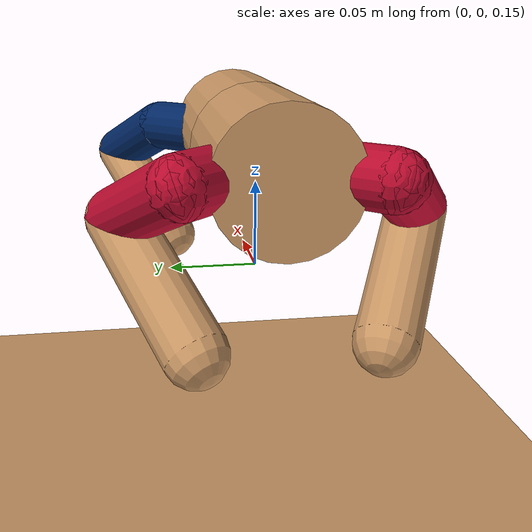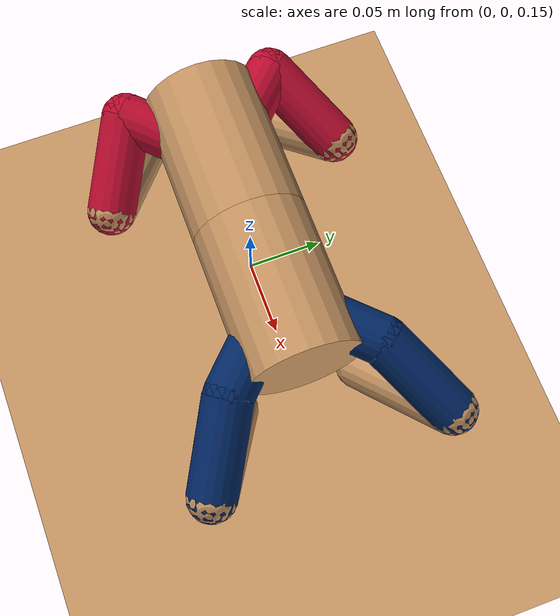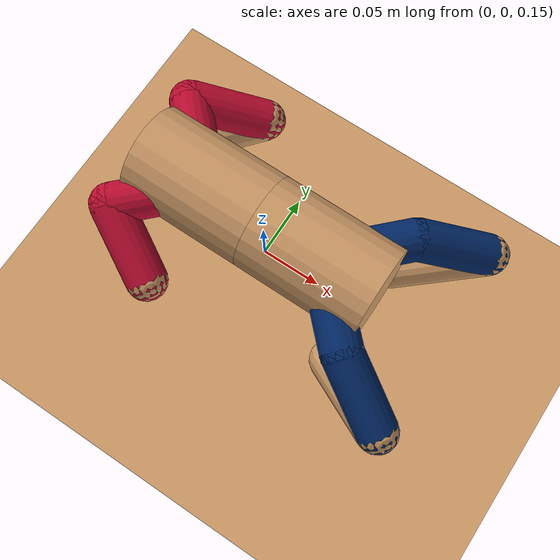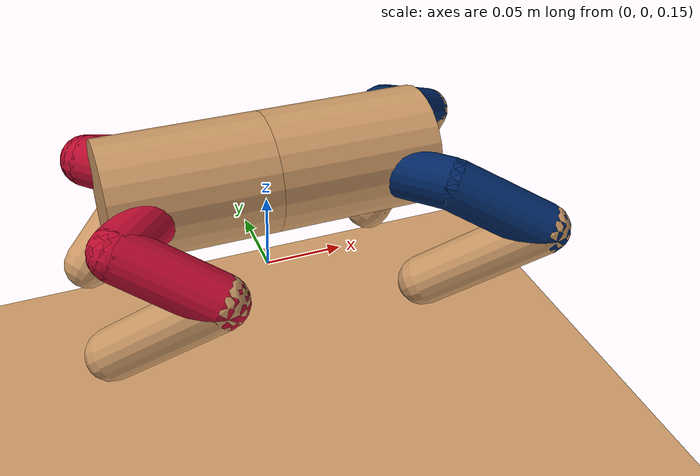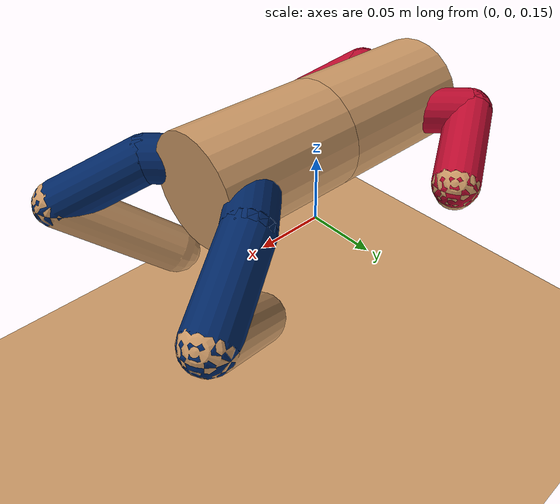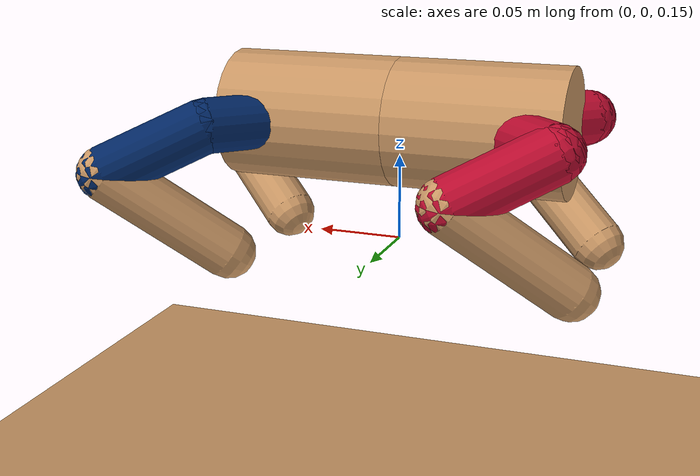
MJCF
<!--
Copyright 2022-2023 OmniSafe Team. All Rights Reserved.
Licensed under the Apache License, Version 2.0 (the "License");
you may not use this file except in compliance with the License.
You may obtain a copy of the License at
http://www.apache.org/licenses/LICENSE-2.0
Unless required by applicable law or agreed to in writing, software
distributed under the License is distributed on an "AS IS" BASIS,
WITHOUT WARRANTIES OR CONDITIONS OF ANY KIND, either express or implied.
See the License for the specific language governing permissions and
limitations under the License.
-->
<mujoco model="doggo">
  <option timestep="0.01"/>
  <size njmax="3000" nconmax="1000"/>
  <default>
    <joint limited="true" stiffness="0.0001" armature="0.00005"/>
    <geom condim="6" size="0.016" rgba="0.8 0.6 0.4 1" type="capsule" density="5"/>
    <motor ctrllimited="true" ctrlrange="-1.0 1.0" gear=".00625"/>
    <site size="0.018" type="sphere" rgba="1 0 0 0"/>
  </default>
  <worldbody>
    <geom name="floor" size="5 5 0.1" type="plane" condim="6"/>
    <body name="agent" pos="0 0 0.22">
      <camera name="vision" pos=".0625 0 .1" xyaxes="0 -0.5 0 .2 0 0.5" fovy="100"/>
      <site name="agent" pos="0 0 0"/>
      <geom name="agent" pos="0 0 0" size="0.0375" fromto="0 0 0 .1 0 0" type="cylinder" density="2"/>
      <freejoint name="agent"/>

      <body name="leg_1" pos="0 0 0">
        <geom fromto=".05 0.0 0.0 0.1 0.05 0.0" name="aux_1" rgba="0.0039 0.1529 0.3961 1" density="20"/>
        <body name="aux_1" pos="0.1 0.05 0">
          <joint axis="0 0 1" name="hip_1_z" pos="0.0 0.0 0.0" range="-0.174533 0.523599" type="hinge" springref="0"/>
          <joint axis="0 1 0" name="hip_1_y" pos="0.0 0.0 0.0" range="-1.308998 0.2618" type="hinge" springref="-0.174533"/>
          <geom fromto="0.0 0.0 0.0 0.049 0.0283 -0.025" name="hip_1" rgba="0.0039 0.1529 0.3961 1" density="20"/>
          <body pos="0.049 0.0283 -0.025">
            <joint axis="-.5 .866 0" name="ankle_1" pos="0.0 0.0 0.0" range="-1.308998 0" type="hinge" springref="-0.349066"/>
            <geom fromto="0.0 0.0 0.0 -0.0588 -0.0339 -0.05" name="ankle_1" density="20"/>
            <site name="ankle_1a" pos="0 0 0"/>
            <site name="ankle_1b" pos="-0.0588 -0.0339 -0.05"/>
          </body>
        </body>
      </body>
      <body name="leg_4" pos="0 0 0">
        <geom fromto=".05 0.0 0.0 0.1 -0.05 0.0" name="aux_4" rgba="0.0039 0.1529 0.3961 1" density="20"/>
        <body name="aux_4" pos="0.1 -0.05 0">
          <joint axis="0 0 -1" name="hip_4_z" pos="0.0 0.0 0.0" range="-0.174533 0.523599" type="hinge" springref="0"/>
          <joint axis="0 1 0" name="hip_4_y" pos="0.0 0.0 0.0" range="-1.308998 0.2618" type="hinge" springref="-0.174533"/>
          <geom fromto="0.0 0.0 0.0 0.049 -0.0283 -0.025" name="hip_4" rgba="0.0039 0.1529 0.3961 1" density="20"/>
          <body pos="0.049 -0.0283 -0.025">
            <joint axis=".5 .866 0" name="ankle_4" pos="0.0 0.0 0.0" range="-1.308998 0" type="hinge" springref="-0.349066"/>
            <geom fromto="0.0 0.0 0.0 -0.0588 0.0339 -0.05" name="ankle_4" density="20"/>
            <site name="ankle_4a" pos="0 0 0"/>
            <site name="ankle_4b" pos="-0.0588 0.0339 -0.05"/>
          </body>
        </body>
      </body>

      <body name="rear" pos="0 0 0">
        <geom name="agent2" pos="0 0 0" size="0.0375" fromto="-.1 0 0 0 0 0" type="cylinder" density="2"/>
        <joint axis="1 0 0" name="waist_x" pos="0 0 0" range="-0.523599 0.523599" type="hinge" springref="0"/>
        <body name="leg_2" pos="0 0 0">
          <geom fromto="-.05 0.0 0.0 -0.1 0.05 0.0" name="aux_2" rgba="0.7412 0.0431 0.1843 1" density="20"/>
          <body name="aux_2" pos="-0.1 0.05 0">
            <joint axis="0 0 1" name="hip_2_z" pos="0.0 0.0 0.0" range="-0.174533 0.523599" type="hinge" springref="0"/>
            <joint axis="0 1 0" name="hip_2_y" pos="0.0 0.0 0.0" range="0 2.356196" type="hinge" springref="0"/>
            <geom fromto="0.0 0.0 0.0 0.049 0.0283 -0.025" name="hip_2" rgba="0.7412 0.0431 0.1843 1" density="20"/>
            <body pos="0.049 0.0283 -0.025">
              <joint axis="-.5 .866 0" name="ankle_2" pos="0.0 0.0 0.0" range="-1.308998 0" type="hinge" springref="-0.349066"/>
              <geom fromto="0.0 0.0 0.0 -0.0588 -0.0339 -0.05" name="ankle_2" density="20"/>
              <site name="ankle_2a" pos="0 0 0"/>
              <site name="ankle_2b" pos="-0.0588 -0.0339 -0.05"/>
            </body>
          </body>
        </body>
        <body name="leg_3" pos="0 0 0">
          <geom fromto="-.05 0.0 0.0 -0.1 -0.05 0.0" name="aux_3" rgba="0.7412 0.0431 0.1843 1" density="20"/>
          <body name="aux_3" pos="-0.1 -0.05 0">
            <joint axis="0 0 -1" name="hip_3_z" pos="0.0 0.0 0.0" range="-0.174533 0.523599" type="hinge" springref="0"/>
            <joint axis="0 1 0" name="hip_3_y" pos="0.0 0.0 0.0" range="0 2.356196" type="hinge" springref="0"/>
            <geom fromto="0.0 0.0 0.0 0.049 -0.0283 -0.025" name="hip_3" rgba="0.7412 0.0431 0.1843 1" density="20"/>
            <body pos="0.049 -0.0283 -0.025">
              <joint axis=".5 .866 0" name="ankle_3" pos="0.0 0.0 0.0" range="-1.308998 0" type="hinge" springref="-0.349066"/>
              <geom fromto="0.0 0.0 0.0 -0.0588 0.0339 -0.05" name="ankle_3" density="20"/>
              <site name="ankle_3a" pos="0 0 0"/>
              <site name="ankle_3b" pos="-0.0588 0.0339 -0.05"/>
            </body>
          </body>
        </body>
      </body>

    </body>
  </worldbody>
  <sensor>
    <touch site="ankle_1a" name="touch_ankle_1a"/>
    <touch site="ankle_1b" name="touch_ankle_1b"/>
    <touch site="ankle_2a" name="touch_ankle_2a"/>
    <touch site="ankle_2b" name="touch_ankle_2b"/>
    <touch site="ankle_3a" name="touch_ankle_3a"/>
    <touch site="ankle_3b" name="touch_ankle_3b"/>
    <touch site="ankle_4a" name="touch_ankle_4a"/>
    <touch site="ankle_4b" name="touch_ankle_4b"/>

    <jointpos joint="hip_1_z" name="jointpos_hip_1_z"/>
    <jointpos joint="hip_2_z" name="jointpos_hip_2_z"/>
    <jointpos joint="hip_3_z" name="jointpos_hip_3_z"/>
    <jointpos joint="hip_4_z" name="jointpos_hip_4_z"/>

    <jointpos joint="hip_1_y" name="jointpos_hip_1_y"/>
    <jointpos joint="hip_2_y" name="jointpos_hip_2_y"/>
    <jointpos joint="hip_3_y" name="jointpos_hip_3_y"/>
    <jointpos joint="hip_4_y" name="jointpos_hip_4_y"/>

    <jointpos joint="ankle_1" name="jointpos_ankle_1"/>
    <jointpos joint="ankle_2" name="jointpos_ankle_2"/>
    <jointpos joint="ankle_3" name="jointpos_ankle_3"/>
    <jointpos joint="ankle_4" name="jointpos_ankle_4"/>

    <jointvel joint="hip_1_z" name="jointvel_hip_1_z"/>
    <jointvel joint="hip_2_z" name="jointvel_hip_2_z"/>
    <jointvel joint="hip_3_z" name="jointvel_hip_3_z"/>
    <jointvel joint="hip_4_z" name="jointvel_hip_4_z"/>

    <jointvel joint="hip_1_y" name="jointvel_hip_1_y"/>
    <jointvel joint="hip_2_y" name="jointvel_hip_2_y"/>
    <jointvel joint="hip_3_y" name="jointvel_hip_3_y"/>
    <jointvel joint="hip_4_y" name="jointvel_hip_4_y"/>

    <jointvel joint="ankle_1" name="jointvel_ankle_1"/>
    <jointvel joint="ankle_2" name="jointvel_ankle_2"/>
    <jointvel joint="ankle_3" name="jointvel_ankle_3"/>
    <jointvel joint="ankle_4" name="jointvel_ankle_4"/>

    <!-- Used for observation -->
    <accelerometer site="agent" name="accelerometer"/>
    <velocimeter site="agent" name="velocimeter"/>
    <gyro site="agent" name="gyro"/>
    <magnetometer site="agent" name="magnetometer"/>

    <!-- Used for intrinsic constraints -->
    <subtreecom body="agent" name="subtreecom"/>
    <subtreelinvel body="agent" name="subtreelinvel"/>
    <subtreeangmom body="agent" name="subtreeangmom"/>
  </sensor>
  <actuator>
    <motor name="hip_1_z" joint="hip_1_z"/>
    <motor name="hip_2_z" joint="hip_2_z"/>
    <motor name="hip_3_z" joint="hip_3_z"/>
    <motor name="hip_4_z" joint="hip_4_z"/>
    <motor name="hip_1_y" joint="hip_1_y"/>
    <motor name="hip_2_y" joint="hip_2_y"/>
    <motor name="hip_3_y" joint="hip_3_y"/>
    <motor name="hip_4_y" joint="hip_4_y"/>
    <motor name="ankle_1" joint="ankle_1"/>
    <motor name="ankle_2" joint="ankle_2"/>
    <motor name="ankle_3" joint="ankle_3"/>
    <motor name="ankle_4" joint="ankle_4"/>
  </actuator>
</mujoco>
